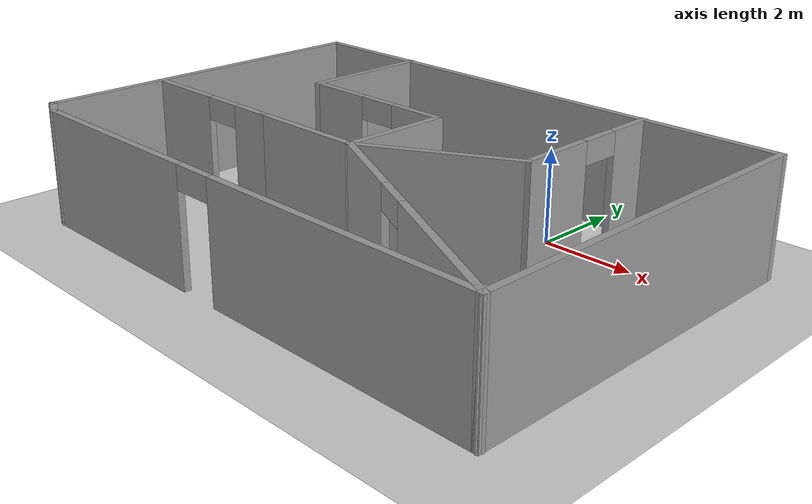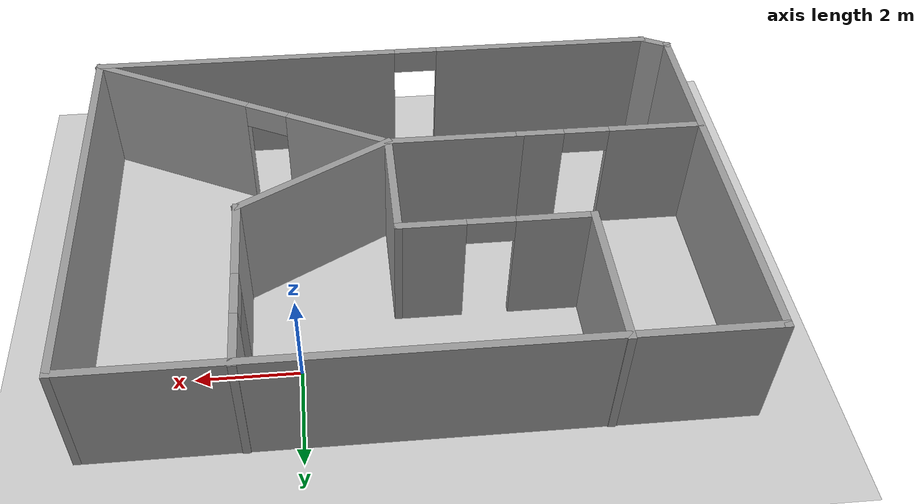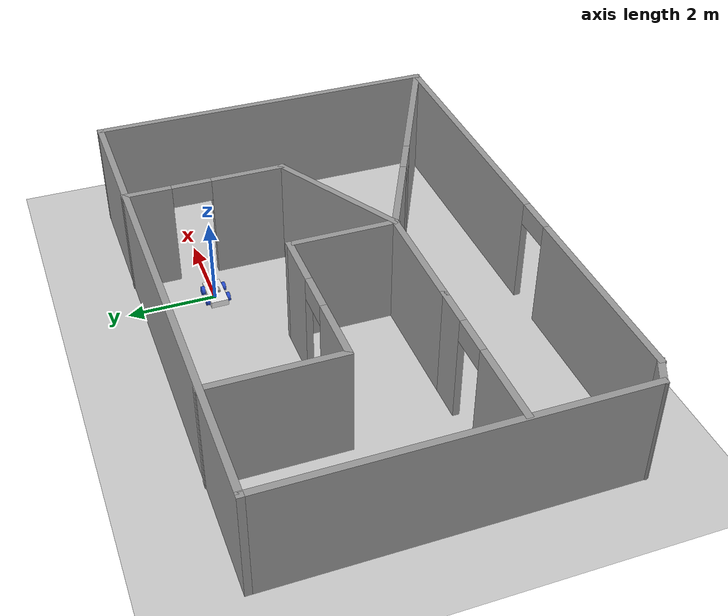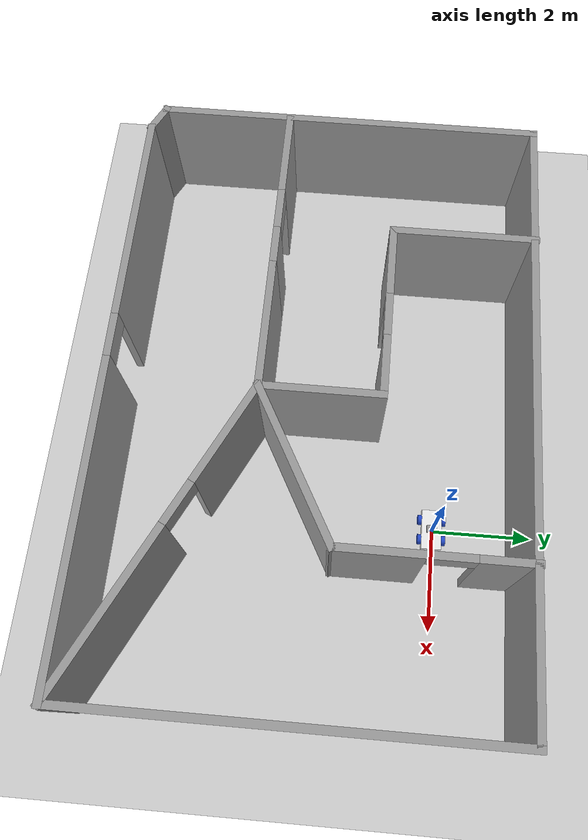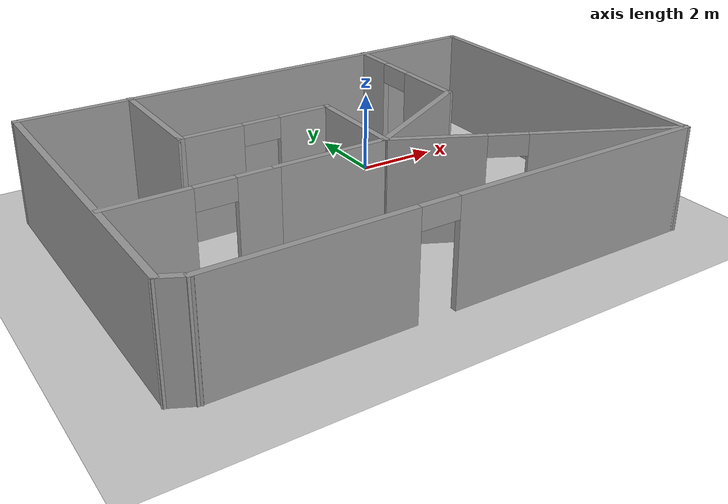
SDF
<sdf version="1.7">
 <world name="default">
  <light name="sun" type="directional">
   <pose>0 0 10 0 -0 0</pose>
   <diffuse>0.8 0.8 0.8 1</diffuse>
   <specular>0.2 0.2 0.2 1</specular>
   <attenuation>
    <range>1000</range>
    <constant>0.9</constant>
    <linear>0.01</linear>
    <quadratic>0.001</quadratic>
   </attenuation>
   <direction>-0.5 0.1 -0.9</direction>
   <spot><inner_angle>0</inner_angle><outer_angle>0</outer_angle><falloff>0</falloff></spot>
  </light>
  <model name="ground_plane">
   <static>1</static>
   <link name="link">
    <collision name="collision">
     <geometry><plane><normal>0 0 1</normal><size>100 100</size></plane></geometry>
     <surface><friction><ode><mu>100</mu><mu2>50</mu2></ode></friction></surface>
    </collision>
    <visual name="visual">
     <cast_shadows>0</cast_shadows>
     <geometry><plane><normal>0 0 1</normal><size>100 100</size></plane></geometry>
     <material>
      <script><uri>file://media/materials/scripts/gazebo.material</uri><name>Gazebo/Grey</name></script>
     </material>
    </visual>
   </link>
  </model>
  <gravity>0 0 -9.8</gravity>
  <magnetic_field>6e-06 2.3e-05 -4.2e-05</magnetic_field>
  <atmosphere type="adiabatic"/>
  <physics type="ode">
   <max_step_size>0.001</max_step_size>
   <real_time_factor>1</real_time_factor>
   <real_time_update_rate>1000</real_time_update_rate>
  </physics>
  <scene><ambient>0.4 0.4 0.4 1</ambient><background>0.7 0.7 0.7 1</background><shadows>1</shadows></scene>
  <audio><device>default</device></audio>
  <spherical_coordinates>
   <surface_model>EARTH_WGS84</surface_model>
   <latitude_deg>0</latitude_deg>
   <longitude_deg>0</longitude_deg>
   <elevation>0</elevation>
   <heading_deg>0</heading_deg>
  </spherical_coordinates>
  <model name="sim_robot">
   <link name="base_link">
    <inertial>
     <pose>0 0 0.03625 0 -0 0</pose>
     <mass>0.8</mass>
     <inertia>
      <ixx>0.0105471</ixx>
      <ixy>0</ixy>
      <ixz>0</ixz>
      <iyy>0.0300471</iyy>
      <iyz>0</iyz>
      <izz>0.0342917</izz>
     </inertia>
    </inertial>
    <collision name="base_link_fixed_joint_lump__chassis_collision">
     <geometry><box><size>0.8 0.4 0.15</size></box></geometry>
    </collision>
    <collision name="base_link_fixed_joint_lump__laser_frame_collision_1">
     <pose>0 0 0.14 0 -0 0</pose>
     <geometry><cylinder><length>0.04</length><radius>0.05</radius></cylinder></geometry>
    </collision>
    <collision name="base_link_fixed_joint_lump__smaller_box_collision_2">
     <pose>0 0 0.075 0 -0 0</pose>
     <geometry><box><size>0.1 0.2 0.1</size></box></geometry>
    </collision>
    <visual name="base_link_fixed_joint_lump__chassis_visual">
     <geometry><box><size>0.8 0.4 0.15</size></box></geometry>
     <material>
      <script><name>Gazebo/White</name><uri>file://media/materials/scripts/gazebo.material</uri></script>
     </material>
    </visual>
    <visual name="base_link_fixed_joint_lump__camera_link_visual_1">
     <pose>0.4 0 0.08 0 -0 0</pose>
     <geometry><box><size>0.01 0.03 0.03</size></box></geometry>
     <material>
      <script><name>Gazebo/Red</name><uri>file://media/materials/scripts/gazebo.material</uri></script>
     </material>
    </visual>
    <visual name="base_link_fixed_joint_lump__laser_frame_visual_2">
     <pose>0 0 0.14 0 -0 0</pose>
     <geometry><cylinder><length>0.04</length><radius>0.05</radius></cylinder></geometry>
     <material>
      <script><name>Gazebo/Red</name><uri>file://media/materials/scripts/gazebo.material</uri></script>
     </material>
    </visual>
    <visual name="base_link_fixed_joint_lump__smaller_box_visual_3">
     <pose>0 0 0.075 0 -0 0</pose>
     <geometry><box><size>0.15 0.2 0.1</size></box></geometry>
     <material>
      <script><name>Gazebo/Gray</name><uri>file://media/materials/scripts/gazebo.material</uri></script>
     </material>
    </visual>
    <sensor name="camera" type="camera">
     <visualize>1</visualize>
     <update_rate>10</update_rate>
     <camera>
      <horizontal_fov>1.089</horizontal_fov>
      <image><format>R8G8B8</format><width>640</width><height>480</height></image>
      <clip><near>0.05</near><far>8</far></clip>
     </camera>
     <plugin name="camera_controller" filename="libgazebo_ros_camera.so">
      <frame_name>camera_link_optical</frame_name>
     </plugin>
     <pose>0.4 0 0.08 0 -0 0</pose>
    </sensor>
    <sensor name="laser" type="ray">
     <visualize>1</visualize>
     <update_rate>10</update_rate>
     <ray>
      <scan>
       <horizontal>
        <samples>360</samples>
        <min_angle>-3.14</min_angle>
        <max_angle>3.14</max_angle>
        <resolution>1</resolution>
       </horizontal>
       <vertical><samples>1</samples><min_angle>0</min_angle><max_angle>0</max_angle></vertical>
      </scan>
      <range><min>0.3</min><max>12</max></range>
     </ray>
     <plugin name="laser_controller" filename="libgazebo_ros_ray_sensor.so">
      <ros><argument>~/out:=scan</argument></ros>
      <output_type>sensor_msgs/LaserScan</output_type>
      <frame_name>laser_frame</frame_name>
     </plugin>
     <pose>0 0 0.14 0 -0 0</pose>
    </sensor>
   </link>
   <joint name="front_left_wheel_joint" type="revolute">
    <pose relative_to="base_link">0.2 0.24 0 -1.5714 0 0</pose>
    <parent>base_link</parent>
    <child>front_left_wheel</child>
    <axis>
     <xyz>0 0 1</xyz>
     <limit><lower>-1e+16</lower><upper>1e+16</upper></limit>
     <dynamics><spring_reference>0</spring_reference><spring_stiffness>0</spring_stiffness></dynamics>
    </axis>
   </joint>
   <link name="front_left_wheel">
    <pose relative_to="front_left_wheel_joint">0 0 0 0 -0 0</pose>
    <inertial>
     <mass>0.1</mass>
     <inertia>
      <ixx>0.000303333</ixx>
      <ixy>0</ixy>
      <ixz>0</ixz>
      <iyy>0.000303333</iyy>
      <iyz>0</iyz>
      <izz>0.0005</izz>
     </inertia>
    </inertial>
    <collision name="front_left_wheel_collision">
     <geometry><cylinder><length>0.08</length><radius>0.1</radius></cylinder></geometry>
    </collision>
    <visual name="front_left_wheel_visual">
     <geometry><cylinder><length>0.08</length><radius>0.1</radius></cylinder></geometry>
     <material>
      <script><name>Gazebo/Blue</name><uri>file://media/materials/scripts/gazebo.material</uri></script>
     </material>
    </visual>
   </link>
   <joint name="front_right_wheel_joint" type="revolute">
    <pose relative_to="base_link">0.2 -0.24 0 1.5714 -0 0</pose>
    <parent>base_link</parent>
    <child>front_right_wheel</child>
    <axis>
     <xyz>0 0 -1</xyz>
     <limit><lower>-1e+16</lower><upper>1e+16</upper></limit>
     <dynamics><spring_reference>0</spring_reference><spring_stiffness>0</spring_stiffness></dynamics>
    </axis>
   </joint>
   <link name="front_right_wheel">
    <pose relative_to="front_right_wheel_joint">0 0 0 0 -0 0</pose>
    <inertial>
     <mass>0.1</mass>
     <inertia>
      <ixx>0.000303333</ixx>
      <ixy>0</ixy>
      <ixz>0</ixz>
      <iyy>0.000303333</iyy>
      <iyz>0</iyz>
      <izz>0.0005</izz>
     </inertia>
    </inertial>
    <collision name="front_right_wheel_collision">
     <geometry><cylinder><length>0.08</length><radius>0.1</radius></cylinder></geometry>
    </collision>
    <visual name="front_right_wheel_visual">
     <geometry><cylinder><length>0.08</length><radius>0.1</radius></cylinder></geometry>
     <material>
      <script><name>Gazebo/Blue</name><uri>file://media/materials/scripts/gazebo.material</uri></script>
     </material>
    </visual>
   </link>
   <joint name="rear_left_wheel_joint" type="revolute">
    <pose relative_to="base_link">-0.2 0.24 0 -1.5714 0 0</pose>
    <parent>base_link</parent>
    <child>rear_left_wheel</child>
    <axis>
     <xyz>0 0 1</xyz>
     <limit><lower>-1e+16</lower><upper>1e+16</upper></limit>
     <dynamics><spring_reference>0</spring_reference><spring_stiffness>0</spring_stiffness></dynamics>
    </axis>
   </joint>
   <link name="rear_left_wheel">
    <pose relative_to="rear_left_wheel_joint">0 0 0 0 -0 0</pose>
    <inertial>
     <mass>0.1</mass>
     <inertia>
      <ixx>0.000303333</ixx>
      <ixy>0</ixy>
      <ixz>0</ixz>
      <iyy>0.000303333</iyy>
      <iyz>0</iyz>
      <izz>0.0005</izz>
     </inertia>
    </inertial>
    <collision name="rear_left_wheel_collision">
     <geometry><cylinder><length>0.08</length><radius>0.1</radius></cylinder></geometry>
    </collision>
    <visual name="rear_left_wheel_visual">
     <geometry><cylinder><length>0.08</length><radius>0.1</radius></cylinder></geometry>
     <material>
      <script><name>Gazebo/Blue</name><uri>file://media/materials/scripts/gazebo.material</uri></script>
     </material>
    </visual>
   </link>
   <joint name="rear_right_wheel_joint" type="revolute">
    <pose relative_to="base_link">-0.2 -0.24 0 1.5714 -0 0</pose>
    <parent>base_link</parent>
    <child>rear_right_wheel</child>
    <axis>
     <xyz>0 0 -1</xyz>
     <limit><lower>-1e+16</lower><upper>1e+16</upper></limit>
     <dynamics><spring_reference>0</spring_reference><spring_stiffness>0</spring_stiffness></dynamics>
    </axis>
   </joint>
   <link name="rear_right_wheel">
    <pose relative_to="rear_right_wheel_joint">0 0 0 0 -0 0</pose>
    <inertial>
     <mass>0.1</mass>
     <inertia>
      <ixx>0.000303333</ixx>
      <ixy>0</ixy>
      <ixz>0</ixz>
      <iyy>0.000303333</iyy>
      <iyz>0</iyz>
      <izz>0.0005</izz>
     </inertia>
    </inertial>
    <collision name="rear_right_wheel_collision">
     <geometry><cylinder><length>0.08</length><radius>0.1</radius></cylinder></geometry>
    </collision>
    <visual name="rear_right_wheel_visual">
     <geometry><cylinder><length>0.08</length><radius>0.1</radius></cylinder></geometry>
     <material>
      <script><name>Gazebo/Blue</name><uri>file://media/materials/scripts/gazebo.material</uri></script>
     </material>
    </visual>
   </link>
   <static>0</static>
   <plugin name="skid_steer_drive" filename="libgazebo_ros_diff_drive.so">
    <update_rate>500</update_rate>
    <num_wheel_pairs>2</num_wheel_pairs>
    <left_joint>front_left_wheel_joint</left_joint>
    <right_joint>front_right_wheel_joint</right_joint>
    <left_joint>rear_left_wheel_joint</left_joint>
    <right_joint>rear_right_wheel_joint</right_joint>
    <wheel_separation>0.48</wheel_separation>
    <wheel_separation>0.48</wheel_separation>
    <wheel_diameter>0.2</wheel_diameter>
    <wheel_diameter>0.2</wheel_diameter>
    <max_wheel_torque>200</max_wheel_torque>
    <max_wheel_acceleration>10.0</max_wheel_acceleration>
    <publish_odom>1</publish_odom>
    <publish_odom_tf>1</publish_odom_tf>
    <publish_wheel_tf>1</publish_wheel_tf>
    <odometry_frame>odom</odometry_frame>
    <robot_base_frame>base_link</robot_base_frame>
   </plugin>
   <pose>0.000493 -0.016046 0.100024 4e-06 -4e-06 0.00793</pose>
  </model>
  <model name="maze1">
   <pose>-2.09983 -2.47684 0 0 -0 0</pose>
   <link name="Wall_0">
    <pose>0.250024 -4.04704 0 0 -0 0</pose>
    <visual name="Wall_0_Visual_0">
     <pose>-3.59707 0 1.25 0 -0 0</pose>
     <geometry><box><size>4.55586 0.15 2.5</size></box></geometry>
     <material>
      <script><uri>file://media/materials/scripts/gazebo.material</uri><name>Gazebo/Grey</name></script>
      <ambient>1 1 1 1</ambient>
     </material>
     <meta><layer>0</layer></meta>
    </visual>
    <collision name="Wall_0_Collision_0">
     <geometry><box><size>4.55586 0.15 2.5</size></box></geometry>
     <pose>-3.59707 0 1.25 0 -0 0</pose>
    </collision>
    <visual name="Wall_0_Visual_1">
     <pose>2.72793 0 1.25 0 -0 0</pose>
     <geometry><box><size>6.29414 0.15 2.5</size></box></geometry>
     <material>
      <script><uri>file://media/materials/scripts/gazebo.material</uri><name>Gazebo/Grey</name></script>
      <ambient>1 1 1 1</ambient>
     </material>
     <meta><layer>0</layer></meta>
    </visual>
    <collision name="Wall_0_Collision_1">
     <geometry><box><size>6.29414 0.15 2.5</size></box></geometry>
     <pose>2.72793 0 1.25 0 -0 0</pose>
    </collision>
    <visual name="Wall_0_Visual_2">
     <pose>-0.869141 0 2.25 0 -0 0</pose>
     <geometry><box><size>0.9 0.15 0.5</size></box></geometry>
     <material>
      <script><uri>file://media/materials/scripts/gazebo.material</uri><name>Gazebo/Grey</name></script>
      <ambient>1 1 1 1</ambient>
     </material>
     <meta><layer>0</layer></meta>
    </visual>
    <collision name="Wall_0_Collision_2">
     <geometry><box><size>0.9 0.15 0.5</size></box></geometry>
     <pose>-0.869141 0 2.25 0 -0 0</pose>
    </collision>
   </link>
   <link name="Wall_1">
    <collision name="Wall_1_Collision">
     <geometry><box><size>8.25 0.15 2.5</size></box></geometry>
     <pose>0 0 1.25 0 -0 0</pose>
    </collision>
    <visual name="Wall_1_Visual">
     <pose>0 0 1.25 0 -0 0</pose>
     <geometry><box><size>8.25 0.15 2.5</size></box></geometry>
     <material>
      <script><uri>file://media/materials/scripts/gazebo.material</uri><name>Gazebo/Grey</name></script>
      <ambient>1 1 1 1</ambient>
     </material>
     <meta><layer>0</layer></meta>
    </visual>
    <pose>6.05002 0.00296 0 0 -0 1.5708</pose>
   </link>
   <link name="Wall_10">
    <pose>-4.21055 -1.12734 0 0 -0 3.14159</pose>
    <visual name="Wall_10_Visual_0">
     <pose>-1.39967 0 1.25 0 -0 0</pose>
     <geometry><box><size>0.950667 0.15 2.5</size></box></geometry>
     <material>
      <script><uri>file://media/materials/scripts/gazebo.material</uri><name>Gazebo/Grey</name></script>
      <ambient>1 1 1 1</ambient>
     </material>
     <meta><layer>0</layer></meta>
    </visual>
    <collision name="Wall_10_Collision_0">
     <geometry><box><size>0.950667 0.15 2.5</size></box></geometry>
     <pose>-1.39967 0 1.25 0 -0 0</pose>
    </collision>
    <visual name="Wall_10_Visual_1">
     <pose>0.925334 0 1.25 0 -0 0</pose>
     <geometry><box><size>1.89933 0.15 2.5</size></box></geometry>
     <material>
      <script><uri>file://media/materials/scripts/gazebo.material</uri><name>Gazebo/Grey</name></script>
      <ambient>1 1 1 1</ambient>
     </material>
     <meta><layer>0</layer></meta>
    </visual>
    <collision name="Wall_10_Collision_1">
     <geometry><box><size>1.89933 0.15 2.5</size></box></geometry>
     <pose>0.925334 0 1.25 0 -0 0</pose>
    </collision>
    <visual name="Wall_10_Visual_2">
     <pose>-0.474333 0 2.25 0 -0 0</pose>
     <geometry><box><size>0.9 0.15 0.5</size></box></geometry>
     <material>
      <script><uri>file://media/materials/scripts/gazebo.material</uri><name>Gazebo/Grey</name></script>
      <ambient>1 1 1 1</ambient>
     </material>
     <meta><layer>0</layer></meta>
    </visual>
    <collision name="Wall_10_Collision_2">
     <geometry><box><size>0.9 0.15 0.5</size></box></geometry>
     <pose>-0.474333 0 2.25 0 -0 0</pose>
    </collision>
   </link>
   <link name="Wall_12">
    <pose>3.1028 2.27266 0 0 -0 -1.5708</pose>
    <visual name="Wall_12_Visual_0">
     <pose>-1.31812 0 1.25 0 -0 0</pose>
     <geometry><box><size>1.11376 0.15 2.5</size></box></geometry>
     <material>
      <script><uri>file://media/materials/scripts/gazebo.material</uri><name>Gazebo/Grey</name></script>
      <ambient>1 1 1 1</ambient>
     </material>
     <meta><layer>0</layer></meta>
    </visual>
    <collision name="Wall_12_Collision_0">
     <geometry><box><size>1.11376 0.15 2.5</size></box></geometry>
     <pose>-1.31812 0 1.25 0 -0 0</pose>
    </collision>
    <visual name="Wall_12_Visual_1">
     <pose>1.00688 0 1.25 0 -0 0</pose>
     <geometry><box><size>1.73623 0.15 2.5</size></box></geometry>
     <material>
      <script><uri>file://media/materials/scripts/gazebo.material</uri><name>Gazebo/Grey</name></script>
      <ambient>1 1 1 1</ambient>
     </material>
     <meta><layer>0</layer></meta>
    </visual>
    <collision name="Wall_12_Collision_1">
     <geometry><box><size>1.73623 0.15 2.5</size></box></geometry>
     <pose>1.00688 0 1.25 0 -0 0</pose>
    </collision>
    <visual name="Wall_12_Visual_2">
     <pose>-0.311235 0 2.25 0 -0 0</pose>
     <geometry><box><size>0.9 0.15 0.5</size></box></geometry>
     <material>
      <script><uri>file://media/materials/scripts/gazebo.material</uri><name>Gazebo/Grey</name></script>
      <ambient>1 1 1 1</ambient>
     </material>
     <meta><layer>0</layer></meta>
    </visual>
    <collision name="Wall_12_Collision_2">
     <geometry><box><size>0.9 0.15 0.5</size></box></geometry>
     <pose>-0.311235 0 2.25 0 -0 0</pose>
    </collision>
   </link>
   <link name="Wall_13">
    <collision name="Wall_13_Collision">
     <geometry><box><size>3.47379 0.15 2.5</size></box></geometry>
     <pose>0 0 1.25 0 -0 0</pose>
    </collision>
    <visual name="Wall_13_Visual">
     <pose>0 0 1.25 0 -0 0</pose>
     <geometry><box><size>3.47379 0.15 2.5</size></box></geometry>
     <material>
      <script><uri>file://media/materials/scripts/gazebo.material</uri><name>Gazebo/Grey</name></script>
      <ambient>1 1 1 1</ambient>
     </material>
     <meta><layer>0</layer></meta>
    </visual>
    <pose>1.64612 -0.327337 0 0 -0 -2.63937</pose>
   </link>
   <link name="Wall_15">
    <pose>3.11974 -2.58719 0 0 -0 2.67939</pose>
    <visual name="Wall_15_Visual_0">
     <pose>-1.57818 0 1.25 0 -0 0</pose>
     <geometry><box><size>3.54123 0.15 2.5</size></box></geometry>
     <material>
      <script><uri>file://media/materials/scripts/gazebo.material</uri><name>Gazebo/Grey</name></script>
      <ambient>1 1 1 1</ambient>
     </material>
     <meta><layer>0</layer></meta>
    </visual>
    <collision name="Wall_15_Collision_0">
     <geometry><box><size>3.54123 0.15 2.5</size></box></geometry>
     <pose>-1.57818 0 1.25 0 -0 0</pose>
    </collision>
    <visual name="Wall_15_Visual_1">
     <pose>2.22062 0 1.25 0 -0 0</pose>
     <geometry><box><size>2.25636 0.15 2.5</size></box></geometry>
     <material>
      <script><uri>file://media/materials/scripts/gazebo.material</uri><name>Gazebo/Grey</name></script>
      <ambient>1 1 1 1</ambient>
     </material>
     <meta><layer>0</layer></meta>
    </visual>
    <collision name="Wall_15_Collision_1">
     <geometry><box><size>2.25636 0.15 2.5</size></box></geometry>
     <pose>2.22062 0 1.25 0 -0 0</pose>
    </collision>
    <visual name="Wall_15_Visual_2">
     <pose>0.642437 0 2.25 0 -0 0</pose>
     <geometry><box><size>0.9 0.15 0.5</size></box></geometry>
     <material>
      <script><uri>file://media/materials/scripts/gazebo.material</uri><name>Gazebo/Grey</name></script>
      <ambient>1 1 1 1</ambient>
     </material>
     <meta><layer>0</layer></meta>
    </visual>
    <collision name="Wall_15_Collision_2">
     <geometry><box><size>0.9 0.15 0.5</size></box></geometry>
     <pose>0.642437 0 2.25 0 -0 0</pose>
    </collision>
   </link>
   <link name="Wall_2">
    <collision name="Wall_2_Collision">
     <geometry><box><size>12.25 0.15 2.5</size></box></geometry>
     <pose>0 0 1.25 0 -0 0</pose>
    </collision>
    <visual name="Wall_2_Visual">
     <pose>0 0 1.25 0 -0 0</pose>
     <geometry><box><size>12.25 0.15 2.5</size></box></geometry>
     <material>
      <script><uri>file://media/materials/scripts/gazebo.material</uri><name>Gazebo/Grey</name></script>
      <ambient>1 1 1 1</ambient>
     </material>
     <meta><layer>0</layer></meta>
    </visual>
    <pose>2.4e-05 4.05296 0 0 -0 3.14159</pose>
   </link>
   <link name="Wall_3">
    <collision name="Wall_3_Collision">
     <geometry><box><size>8 0.15 2.5</size></box></geometry>
     <pose>0 0 1.25 0 -0 0</pose>
    </collision>
    <visual name="Wall_3_Visual">
     <pose>0 0 1.25 0 -0 0</pose>
     <geometry><box><size>8 0.15 2.5</size></box></geometry>
     <material>
      <script><uri>file://media/materials/scripts/gazebo.material</uri><name>Gazebo/Grey</name></script>
      <ambient>1 1 1 1</ambient>
     </material>
     <meta><layer>0</layer></meta>
    </visual>
    <pose>-6.04998 0.12796 0 0 -0 -1.5708</pose>
   </link>
   <link name="Wall_4">
    <collision name="Wall_4_Collision">
     <geometry><box><size>0.709017 0.15 2.5</size></box></geometry>
     <pose>0 0 1.25 0 -0 0</pose>
    </collision>
    <visual name="Wall_4_Visual">
     <pose>0 0 1.25 0 -0 0</pose>
     <geometry><box><size>0.709017 0.15 2.5</size></box></geometry>
     <material>
      <script><uri>file://media/materials/scripts/gazebo.material</uri><name>Gazebo/Grey</name></script>
      <ambient>1 1 1 1</ambient>
     </material>
     <meta><layer>0</layer></meta>
    </visual>
    <pose>-5.79998 -3.92204 0 0 -0 -0.463648</pose>
   </link>
   <link name="Wall_6">
    <collision name="Wall_6_Collision">
     <geometry><box><size>3 0.15 2.5</size></box></geometry>
     <pose>0 0 1.25 0 -0 0</pose>
    </collision>
    <visual name="Wall_6_Visual">
     <pose>0 0 1.25 0 -0 0</pose>
     <geometry><box><size>3 0.15 2.5</size></box></geometry>
     <material>
      <script><uri>file://media/materials/scripts/gazebo.material</uri><name>Gazebo/Grey</name></script>
      <ambient>1 1 1 1</ambient>
     </material>
     <meta><layer>0</layer></meta>
    </visual>
    <pose>-3.41055 2.64766 0 0 -0 -1.5708</pose>
   </link>
   <link name="Wall_7">
    <pose>-1.61055 1.22266 0 0 -0 0</pose>
    <visual name="Wall_7_Visual_0">
     <pose>-1.10876 0 1.25 0 -0 0</pose>
     <geometry><box><size>1.53248 0.15 2.5</size></box></geometry>
     <material>
      <script><uri>file://media/materials/scripts/gazebo.material</uri><name>Gazebo/Grey</name></script>
      <ambient>1 1 1 1</ambient>
     </material>
     <meta><layer>0</layer></meta>
    </visual>
    <collision name="Wall_7_Collision_0">
     <geometry><box><size>1.53248 0.15 2.5</size></box></geometry>
     <pose>-1.10876 0 1.25 0 -0 0</pose>
    </collision>
    <visual name="Wall_7_Visual_1">
     <pose>1.21624 0 1.25 0 -0 0</pose>
     <geometry><box><size>1.31752 0.15 2.5</size></box></geometry>
     <material>
      <script><uri>file://media/materials/scripts/gazebo.material</uri><name>Gazebo/Grey</name></script>
      <ambient>1 1 1 1</ambient>
     </material>
     <meta><layer>0</layer></meta>
    </visual>
    <collision name="Wall_7_Collision_1">
     <geometry><box><size>1.31752 0.15 2.5</size></box></geometry>
     <pose>1.21624 0 1.25 0 -0 0</pose>
    </collision>
    <visual name="Wall_7_Visual_2">
     <pose>0.10748 0 2.25 0 -0 0</pose>
     <geometry><box><size>0.9 0.15 0.5</size></box></geometry>
     <material>
      <script><uri>file://media/materials/scripts/gazebo.material</uri><name>Gazebo/Grey</name></script>
      <ambient>1 1 1 1</ambient>
     </material>
     <meta><layer>0</layer></meta>
    </visual>
    <collision name="Wall_7_Collision_2">
     <geometry><box><size>0.9 0.15 0.5</size></box></geometry>
     <pose>0.10748 0 2.25 0 -0 0</pose>
    </collision>
   </link>
   <link name="Wall_8">
    <collision name="Wall_8_Collision">
     <geometry><box><size>2.5 0.15 2.5</size></box></geometry>
     <pose>0 0 1.25 0 -0 0</pose>
    </collision>
    <visual name="Wall_8_Visual">
     <pose>0 0 1.25 0 -0 0</pose>
     <geometry><box><size>2.5 0.15 2.5</size></box></geometry>
     <material>
      <script><uri>file://media/materials/scripts/gazebo.material</uri><name>Gazebo/Grey</name></script>
      <ambient>1 1 1 1</ambient>
     </material>
     <meta><layer>0</layer></meta>
    </visual>
    <pose>0.189448 0.047663 0 0 -0 -1.5708</pose>
   </link>
   <link name="Wall_9">
    <collision name="Wall_9_Collision">
     <geometry><box><size>2.75 0.15 2.5</size></box></geometry>
     <pose>0 0 1.25 0 -0 0</pose>
    </collision>
    <visual name="Wall_9_Visual">
     <pose>0 0 1.25 0 -0 0</pose>
     <geometry><box><size>2.75 0.15 2.5</size></box></geometry>
     <material>
      <script><uri>file://media/materials/scripts/gazebo.material</uri><name>Gazebo/Grey</name></script>
      <ambient>1 1 1 1</ambient>
     </material>
     <meta><layer>0</layer></meta>
    </visual>
    <pose>-1.11055 -1.12734 0 0 -0 3.14159</pose>
   </link>
   <static>1</static>
  </model>
 </world>
</sdf>
